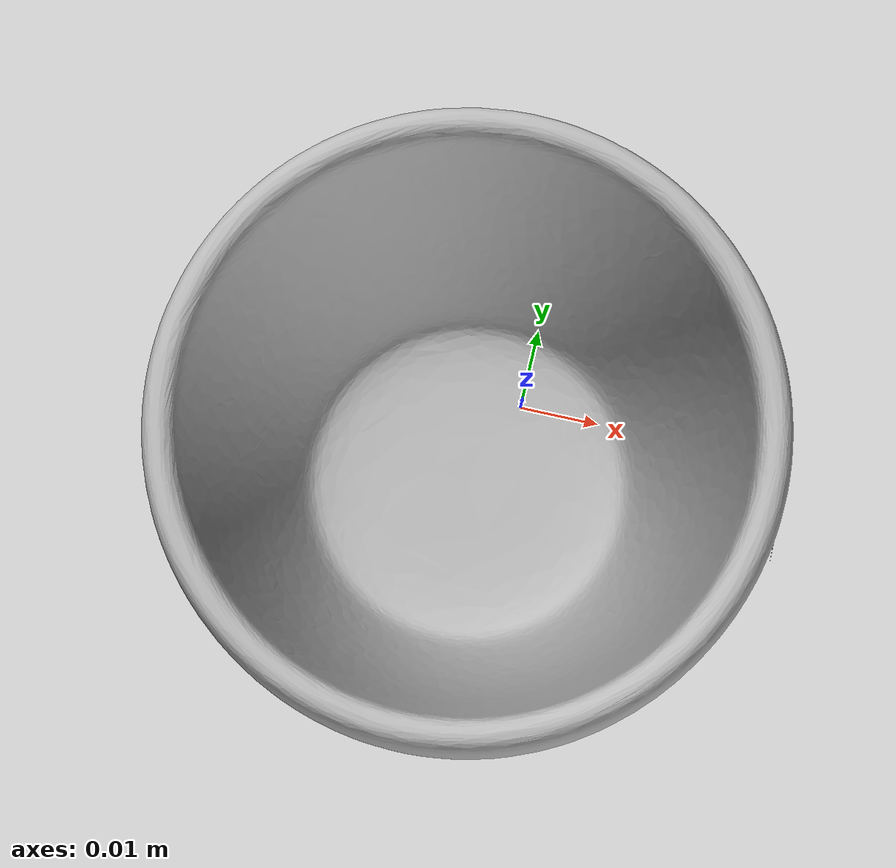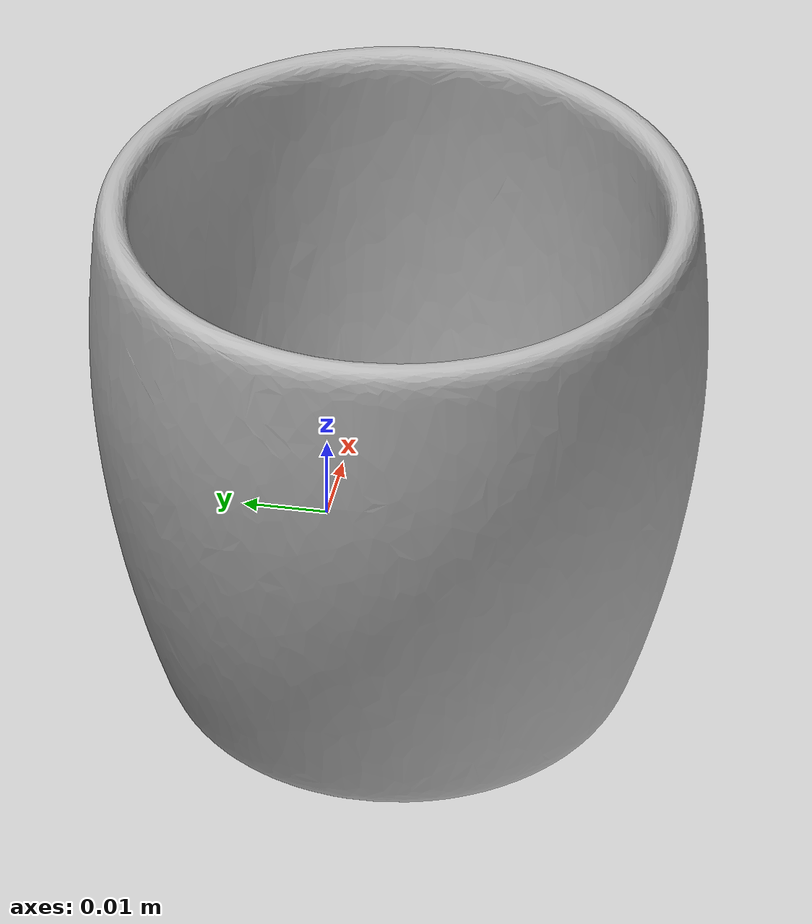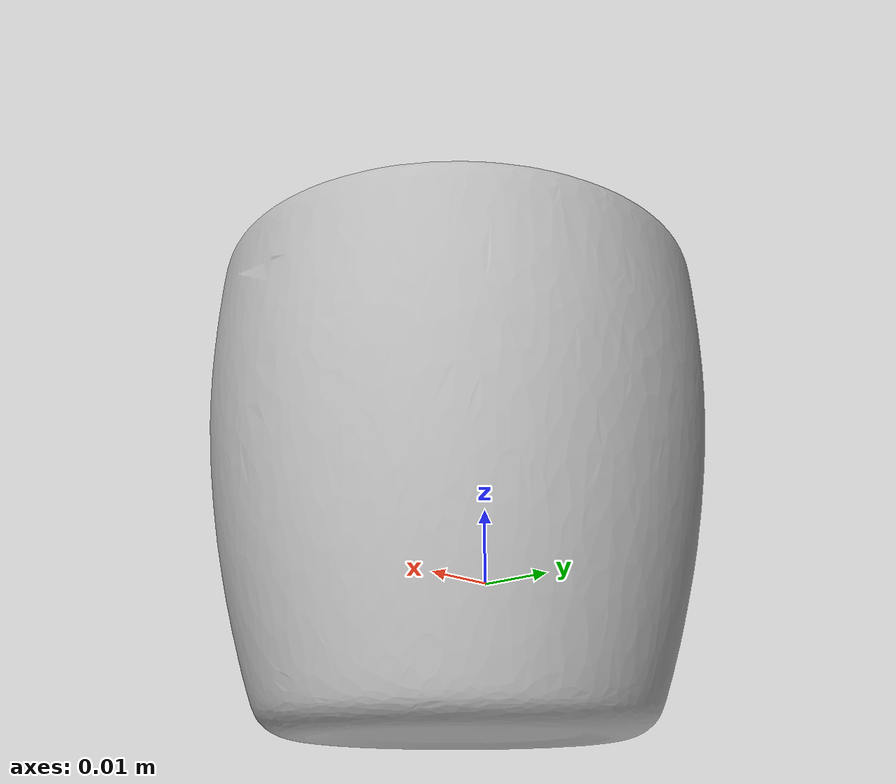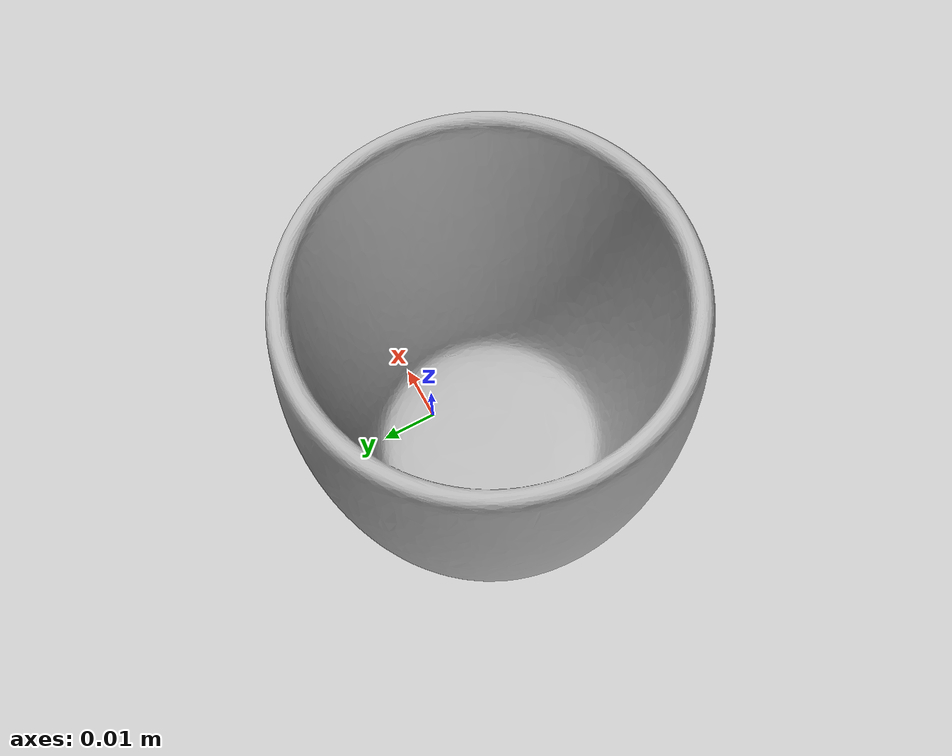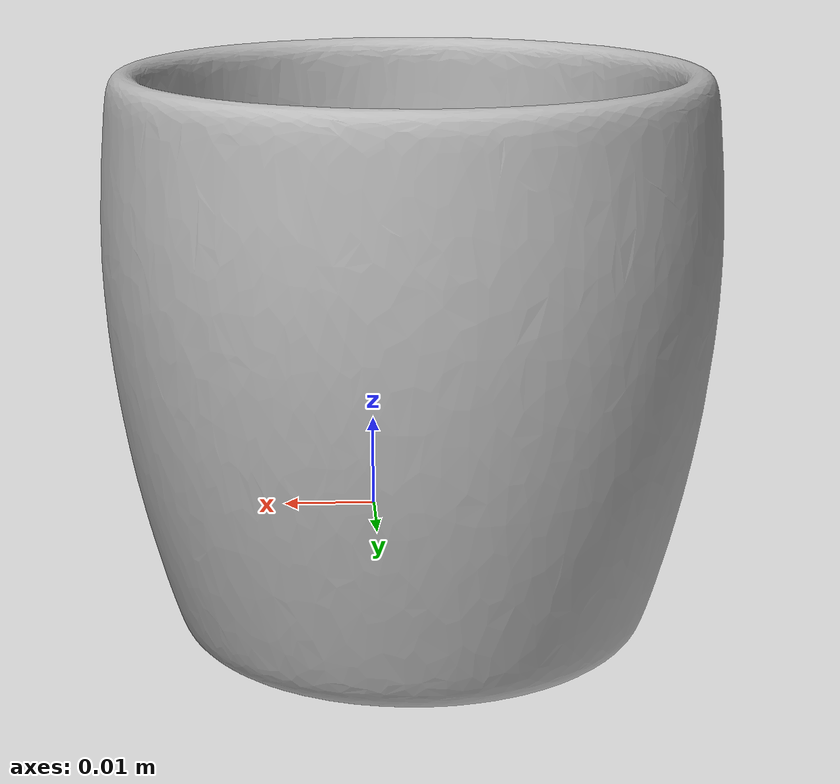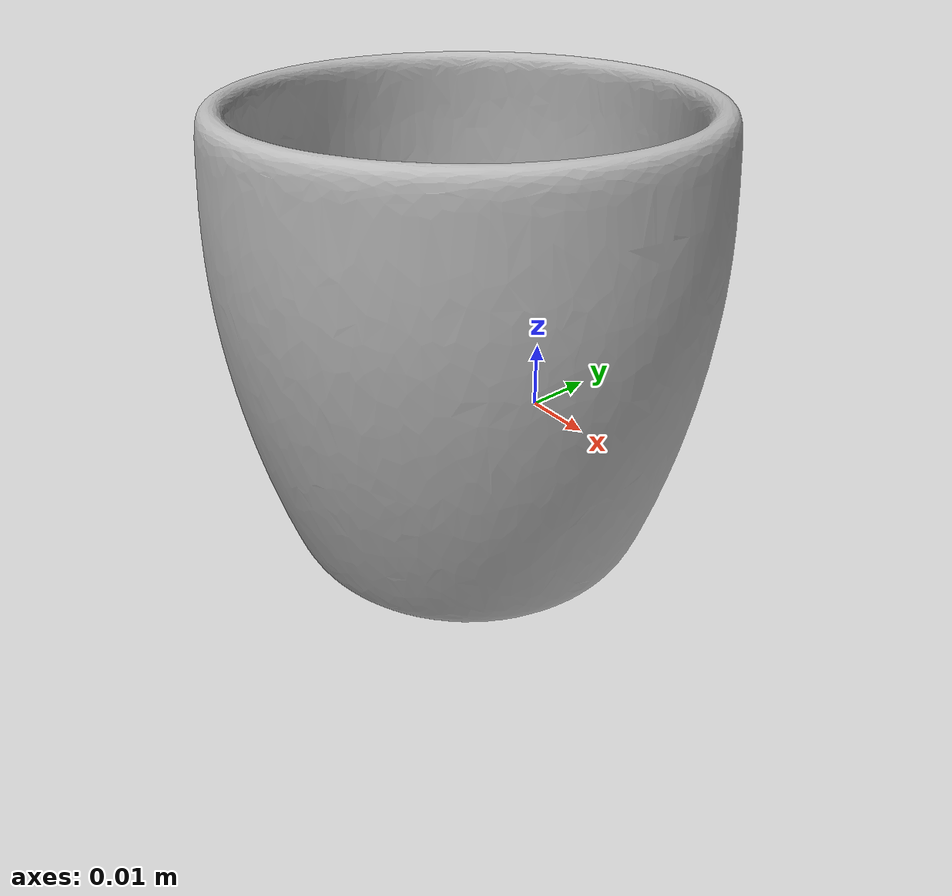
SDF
<?xml version='1.0'?>
<sdf version='1.6'>
    <model name='cup'>
        <pose frame=''>0.0 0.0 0.0 0.0 0.0 0.</pose>
        <link name='base_link_cup'>
            <gravity>0</gravity>
            <visual name='base_link_cup_vis'>
                <geometry>
                    <mesh>
                        <scale>0.08 0.08 0.08</scale>
                        <uri>model://meshes/cup_gazebo.dae</uri>
                    </mesh>
                </geometry>
            </visual>
            <collision name='base_link_cup_col'>
                <geometry>
                    <mesh>
                        <scale>0.08 0.08 0.08</scale>
                        <uri>model://meshes/cup_gazebo.dae</uri>
                    </mesh>
                </geometry>
            </collision>
        </link>
    </model>
</sdf>
